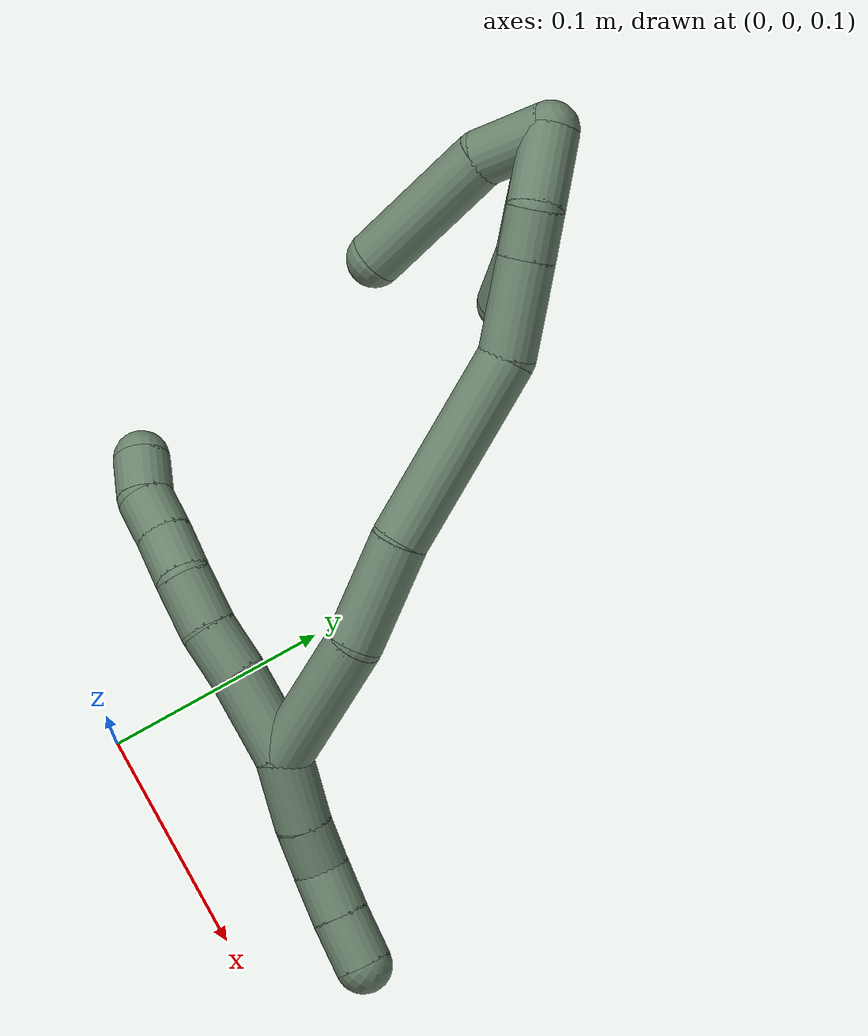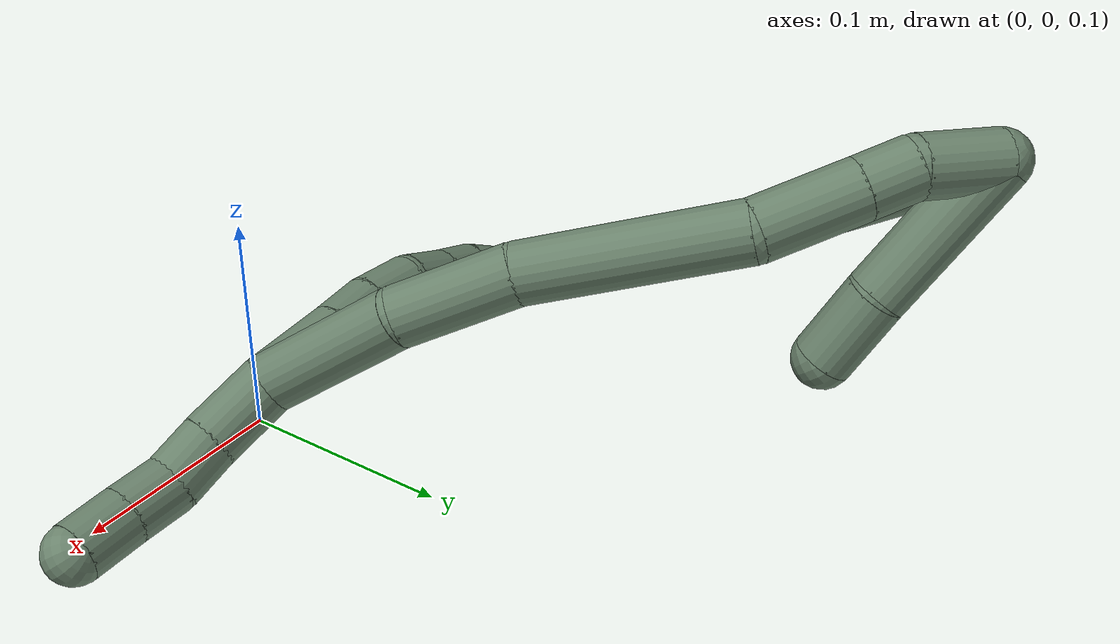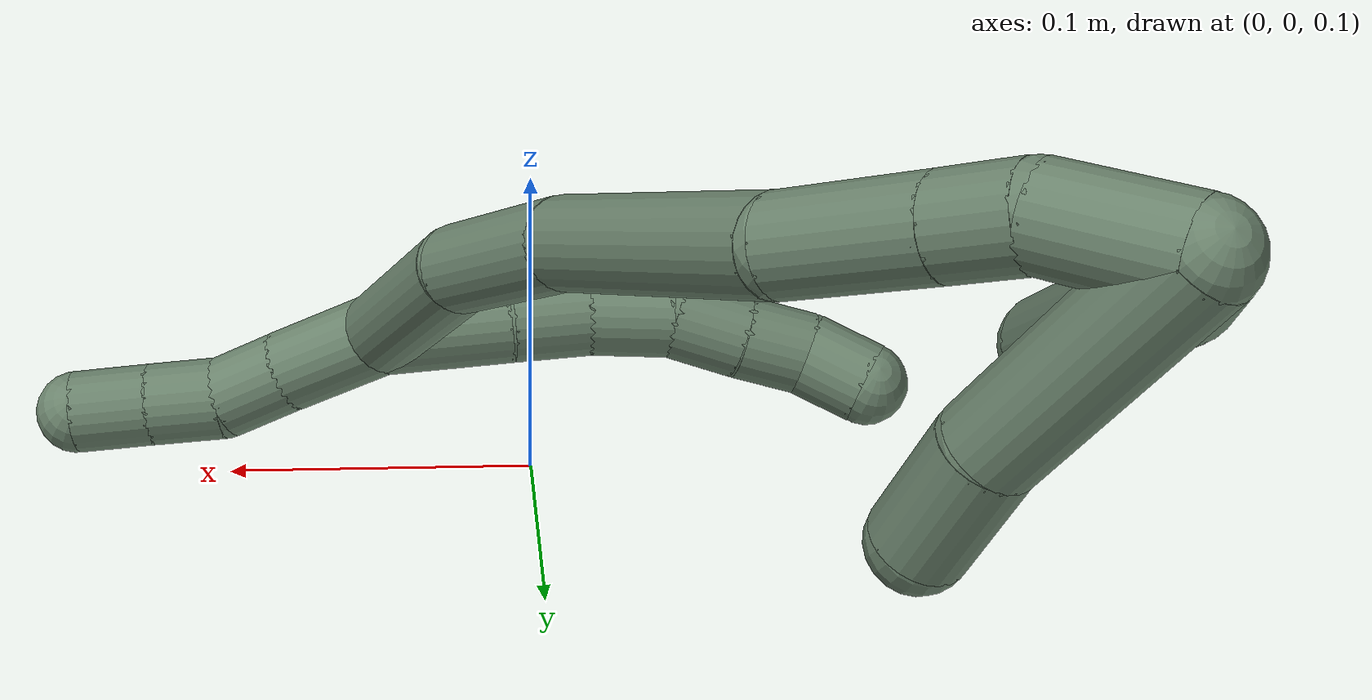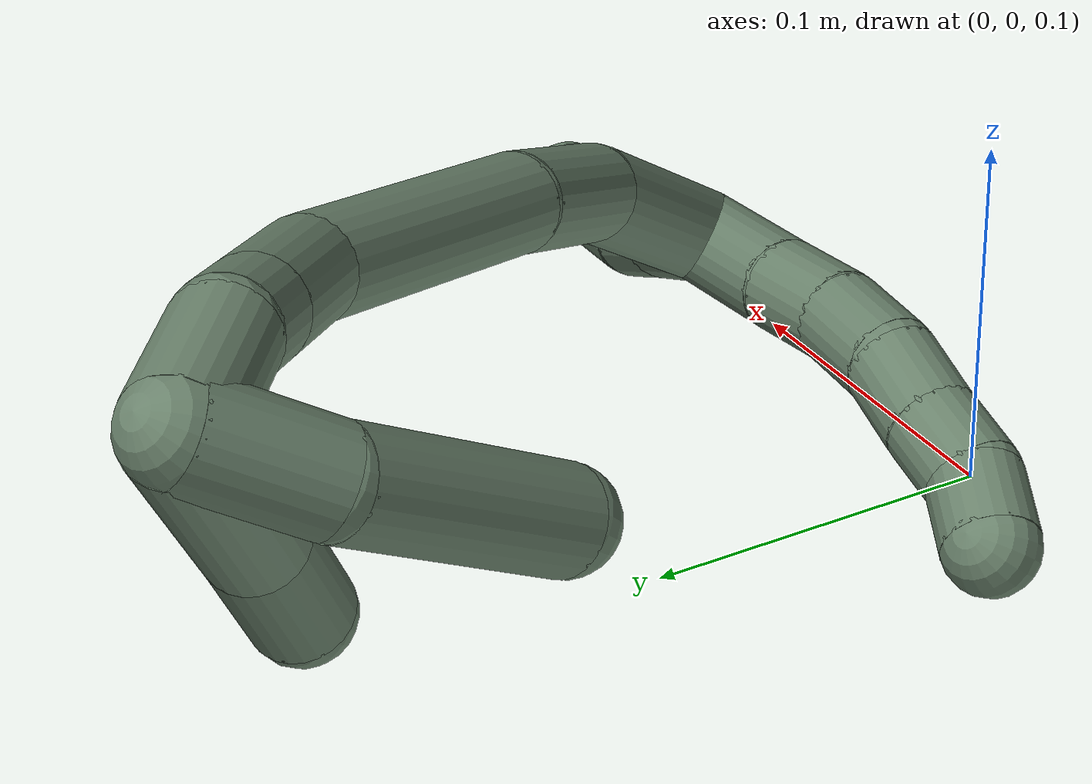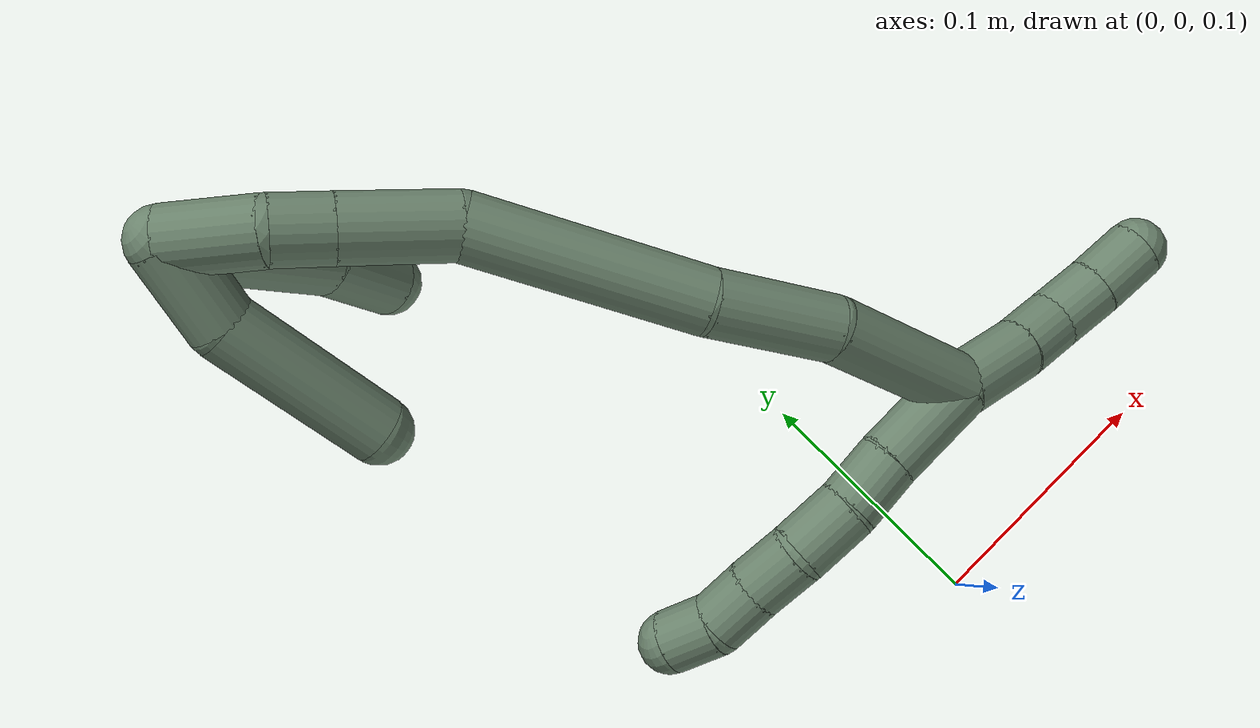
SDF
<sdf version="1.7">
 <world name="default">
  <model name="17">
   <static>0</static>
   <link name="17">
    <collision name="collision-cylinder-e_1_2_8">
     <pose>-0.014652 -0.012547 0.004507 1.22593 -0.832537 -0.602946</pose>
     <geometry><cylinder><radius>0.0125</radius><length>0.039619</length></cylinder></geometry>
     <surface>
      <friction><ode><mu>1.16</mu><mu2>1.16</mu2><slip1>0</slip1><slip2>0</slip2></ode></friction>
      <contact><ode><kp>1e+06</kp><kd>1</kd><max_vel>0</max_vel><min_depth>0.001</min_depth></ode></contact>
     </surface>
    </collision>
    <visual name="visual-cylinder-e_1_2_8">
     <pose>-0.014652 -0.012547 0.004507 1.22593 -0.832537 -0.602946</pose>
     <geometry><cylinder><radius>0.0125</radius><length>0.039619</length></cylinder></geometry>
     <material><ambient>0.415686 0.509804 0.423529 1</ambient></material>
    </visual>
    <collision name="collision-cylinder-e_2_8_9">
     <pose>-0.037965 -0.032835 0.01082 1.34167 -0.828203 -0.671221</pose>
     <geometry><cylinder><radius>0.0125</radius><length>0.023511</length></cylinder></geometry>
     <surface>
      <friction><ode><mu>1.16</mu><mu2>1.16</mu2><slip1>0</slip1><slip2>0</slip2></ode></friction>
      <contact><ode><kp>1e+06</kp><kd>1</kd><max_vel>0</max_vel><min_depth>0.001</min_depth></ode></contact>
     </surface>
    </collision>
    <visual name="visual-cylinder-e_2_8_9">
     <pose>-0.037965 -0.032835 0.01082 1.34167 -0.828203 -0.671221</pose>
     <geometry><cylinder><radius>0.0125</radius><length>0.023511</length></cylinder></geometry>
     <material><ambient>0.415686 0.509804 0.423529 1</ambient></material>
    </visual>
    <collision name="collision-cylinder-e_3_9_10">
     <pose>-0.056859 -0.047309 0.015151 1.21188 -0.958279 -0.691059</pose>
     <geometry><cylinder><radius>0.0125</radius><length>0.025015</length></cylinder></geometry>
     <surface>
      <friction><ode><mu>1.16</mu><mu2>1.16</mu2><slip1>0</slip1><slip2>0</slip2></ode></friction>
      <contact><ode><kp>1e+06</kp><kd>1</kd><max_vel>0</max_vel><min_depth>0.001</min_depth></ode></contact>
     </surface>
    </collision>
    <visual name="visual-cylinder-e_3_9_10">
     <pose>-0.056859 -0.047309 0.015151 1.21188 -0.958279 -0.691059</pose>
     <geometry><cylinder><radius>0.0125</radius><length>0.025015</length></cylinder></geometry>
     <material><ambient>0.415686 0.509804 0.423529 1</ambient></material>
    </visual>
    <collision name="collision-cylinder-e_4_10_11">
     <pose>-0.077236 -0.057798 0.018205 1.43116 -1.21301 -1.08531</pose>
     <geometry><cylinder><radius>0.0125</radius><length>0.021658</length></cylinder></geometry>
     <surface>
      <friction><ode><mu>1.16</mu><mu2>1.16</mu2><slip1>0</slip1><slip2>0</slip2></ode></friction>
      <contact><ode><kp>1e+06</kp><kd>1</kd><max_vel>0</max_vel><min_depth>0.001</min_depth></ode></contact>
     </surface>
    </collision>
    <visual name="visual-cylinder-e_4_10_11">
     <pose>-0.077236 -0.057798 0.018205 1.43116 -1.21301 -1.08531</pose>
     <geometry><cylinder><radius>0.0125</radius><length>0.021658</length></cylinder></geometry>
     <material><ambient>0.415686 0.509804 0.423529 1</ambient></material>
    </visual>
    <collision name="collision-cylinder-e_5_11_12">
     <pose>-0.096596 -0.065541 0.019113 1.47569 -1.16081 -1.0752</pose>
     <geometry><cylinder><radius>0.0125</radius><length>0.0201</length></cylinder></geometry>
     <surface>
      <friction><ode><mu>1.16</mu><mu2>1.16</mu2><slip1>0</slip1><slip2>0</slip2></ode></friction>
      <contact><ode><kp>1e+06</kp><kd>1</kd><max_vel>0</max_vel><min_depth>0.001</min_depth></ode></contact>
     </surface>
    </collision>
    <visual name="visual-cylinder-e_5_11_12">
     <pose>-0.096596 -0.065541 0.019113 1.47569 -1.16081 -1.0752</pose>
     <geometry><cylinder><radius>0.0125</radius><length>0.0201</length></cylinder></geometry>
     <material><ambient>0.415686 0.509804 0.423529 1</ambient></material>
    </visual>
    <collision name="collision-cylinder-e_6_12_6">
     <pose>-0.115626 -0.070508 0.021422 0.469904 -1.35388 -0.380083</pose>
     <geometry><cylinder><radius>0.0125</radius><length>0.020097</length></cylinder></geometry>
     <surface>
      <friction><ode><mu>1.16</mu><mu2>1.16</mu2><slip1>0</slip1><slip2>0</slip2></ode></friction>
      <contact><ode><kp>1e+06</kp><kd>1</kd><max_vel>0</max_vel><min_depth>0.001</min_depth></ode></contact>
     </surface>
    </collision>
    <visual name="visual-cylinder-e_6_12_6">
     <pose>-0.115626 -0.070508 0.021422 0.469904 -1.35388 -0.380083</pose>
     <geometry><cylinder><radius>0.0125</radius><length>0.020097</length></cylinder></geometry>
     <material><ambient>0.415686 0.509804 0.423529 1</ambient></material>
    </visual>
    <collision name="collision-cylinder-e_1_2_13">
     <pose>0.008409 0.010204 -0.009294 -2.30953 0.5472 -1.13178</pose>
     <geometry><cylinder><radius>0.0125</radius><length>0.032325</length></cylinder></geometry>
     <surface>
      <friction><ode><mu>1.16</mu><mu2>1.16</mu2><slip1>0</slip1><slip2>0</slip2></ode></friction>
      <contact><ode><kp>1e+06</kp><kd>1</kd><max_vel>0</max_vel><min_depth>0.001</min_depth></ode></contact>
     </surface>
    </collision>
    <visual name="visual-cylinder-e_1_2_13">
     <pose>0.008409 0.010204 -0.009294 -2.30953 0.5472 -1.13178</pose>
     <geometry><cylinder><radius>0.0125</radius><length>0.032325</length></cylinder></geometry>
     <material><ambient>0.415686 0.509804 0.423529 1</ambient></material>
    </visual>
    <collision name="collision-cylinder-e_2_13_14">
     <pose>0.02236 0.027979 -0.024158 -2.20514 0.532712 -0.98947</pose>
     <geometry><cylinder><radius>0.0125</radius><length>0.021821</length></cylinder></geometry>
     <surface>
      <friction><ode><mu>1.16</mu><mu2>1.16</mu2><slip1>0</slip1><slip2>0</slip2></ode></friction>
      <contact><ode><kp>1e+06</kp><kd>1</kd><max_vel>0</max_vel><min_depth>0.001</min_depth></ode></contact>
     </surface>
    </collision>
    <visual name="visual-cylinder-e_2_13_14">
     <pose>0.02236 0.027979 -0.024158 -2.20514 0.532712 -0.98947</pose>
     <geometry><cylinder><radius>0.0125</radius><length>0.021821</length></cylinder></geometry>
     <material><ambient>0.415686 0.509804 0.423529 1</ambient></material>
    </visual>
    <collision name="collision-cylinder-e_3_14_15">
     <pose>0.036176 0.041981 -0.033437 -2.09382 0.839528 -1.31547</pose>
     <geometry><cylinder><radius>0.0125</radius><length>0.022235</length></cylinder></geometry>
     <surface>
      <friction><ode><mu>1.16</mu><mu2>1.16</mu2><slip1>0</slip1><slip2>0</slip2></ode></friction>
      <contact><ode><kp>1e+06</kp><kd>1</kd><max_vel>0</max_vel><min_depth>0.001</min_depth></ode></contact>
     </surface>
    </collision>
    <visual name="visual-cylinder-e_3_14_15">
     <pose>0.036176 0.041981 -0.033437 -2.09382 0.839528 -1.31547</pose>
     <geometry><cylinder><radius>0.0125</radius><length>0.022235</length></cylinder></geometry>
     <material><ambient>0.415686 0.509804 0.423529 1</ambient></material>
    </visual>
    <collision name="collision-cylinder-e_4_15_5">
     <pose>0.053194 0.055549 -0.040625 -2.02458 0.833546 -1.23279</pose>
     <geometry><cylinder><radius>0.0125</radius><length>0.023619</length></cylinder></geometry>
     <surface>
      <friction><ode><mu>1.16</mu><mu2>1.16</mu2><slip1>0</slip1><slip2>0</slip2></ode></friction>
      <contact><ode><kp>1e+06</kp><kd>1</kd><max_vel>0</max_vel><min_depth>0.001</min_depth></ode></contact>
     </surface>
    </collision>
    <visual name="visual-cylinder-e_4_15_5">
     <pose>0.053194 0.055549 -0.040625 -2.02458 0.833546 -1.23279</pose>
     <geometry><cylinder><radius>0.0125</radius><length>0.023619</length></cylinder></geometry>
     <material><ambient>0.415686 0.509804 0.423529 1</ambient></material>
    </visual>
    <collision name="collision-cylinder-e_1_2_16">
     <pose>-0.006268 -0.001966 0.03124 0.062857 -0.197631 -0.006234</pose>
     <geometry><cylinder><radius>0.0125</radius><length>0.063846</length></cylinder></geometry>
     <surface>
      <friction><ode><mu>1.16</mu><mu2>1.16</mu2><slip1>0</slip1><slip2>0</slip2></ode></friction>
      <contact><ode><kp>1e+06</kp><kd>1</kd><max_vel>0</max_vel><min_depth>0.001</min_depth></ode></contact>
     </surface>
    </collision>
    <visual name="visual-cylinder-e_1_2_16">
     <pose>-0.006268 -0.001966 0.03124 0.062857 -0.197631 -0.006234</pose>
     <geometry><cylinder><radius>0.0125</radius><length>0.063846</length></cylinder></geometry>
     <material><ambient>0.415686 0.509804 0.423529 1</ambient></material>
    </visual>
    <collision name="collision-cylinder-e_2_16_17">
     <pose>-0.023252 -0.005662 0.084415 0.078684 -0.453194 -0.01815</pose>
     <geometry><cylinder><radius>0.0125</radius><length>0.048948</length></cylinder></geometry>
     <surface>
      <friction><ode><mu>1.16</mu><mu2>1.16</mu2><slip1>0</slip1><slip2>0</slip2></ode></friction>
      <contact><ode><kp>1e+06</kp><kd>1</kd><max_vel>0</max_vel><min_depth>0.001</min_depth></ode></contact>
     </surface>
    </collision>
    <visual name="visual-cylinder-e_2_16_17">
     <pose>-0.023252 -0.005662 0.084415 0.078684 -0.453194 -0.01815</pose>
     <geometry><cylinder><radius>0.0125</radius><length>0.048948</length></cylinder></geometry>
     <material><ambient>0.415686 0.509804 0.423529 1</ambient></material>
    </visual>
    <collision name="collision-cylinder-e_3_17_18">
     <pose>-0.055359 -0.003296 0.145127 -0.105237 -0.501774 0.026994</pose>
     <geometry><cylinder><radius>0.0125</radius><length>0.088949</length></cylinder></geometry>
     <surface>
      <friction><ode><mu>1.16</mu><mu2>1.16</mu2><slip1>0</slip1><slip2>0</slip2></ode></friction>
      <contact><ode><kp>1e+06</kp><kd>1</kd><max_vel>0</max_vel><min_depth>0.001</min_depth></ode></contact>
     </surface>
    </collision>
    <visual name="visual-cylinder-e_3_17_18">
     <pose>-0.055359 -0.003296 0.145127 -0.105237 -0.501774 0.026994</pose>
     <geometry><cylinder><radius>0.0125</radius><length>0.088949</length></cylinder></geometry>
     <material><ambient>0.415686 0.509804 0.423529 1</ambient></material>
    </visual>
    <collision name="collision-cylinder-e_4_18_19">
     <pose>-0.089291 -0.003516 0.200165 0.259438 -0.640528 -0.086483</pose>
     <geometry><cylinder><radius>0.0125</radius><length>0.041968</length></cylinder></geometry>
     <surface>
      <friction><ode><mu>1.16</mu><mu2>1.16</mu2><slip1>0</slip1><slip2>0</slip2></ode></friction>
      <contact><ode><kp>1e+06</kp><kd>1</kd><max_vel>0</max_vel><min_depth>0.001</min_depth></ode></contact>
     </surface>
    </collision>
    <visual name="visual-cylinder-e_4_18_19">
     <pose>-0.089291 -0.003516 0.200165 0.259438 -0.640528 -0.086483</pose>
     <geometry><cylinder><radius>0.0125</radius><length>0.041968</length></cylinder></geometry>
     <material><ambient>0.415686 0.509804 0.423529 1</ambient></material>
    </visual>
    <collision name="collision-cylinder-e_5_19_20">
     <pose>-0.108253 -0.010153 0.22476 0.271585 -0.638588 -0.090282</pose>
     <geometry><cylinder><radius>0.0125</radius><length>0.021548</length></cylinder></geometry>
     <surface>
      <friction><ode><mu>1.16</mu><mu2>1.16</mu2><slip1>0</slip1><slip2>0</slip2></ode></friction>
      <contact><ode><kp>1e+06</kp><kd>1</kd><max_vel>0</max_vel><min_depth>0.001</min_depth></ode></contact>
     </surface>
    </collision>
    <visual name="visual-cylinder-e_5_19_20">
     <pose>-0.108253 -0.010153 0.22476 0.271585 -0.638588 -0.090282</pose>
     <geometry><cylinder><radius>0.0125</radius><length>0.021548</length></cylinder></geometry>
     <material><ambient>0.415686 0.509804 0.423529 1</ambient></material>
    </visual>
    <collision name="collision-cylinder-e_6_20_1">
     <pose>-0.128769 -0.013148 0.243225 0.066455 -0.946464 -0.034037</pose>
     <geometry><cylinder><radius>0.0125</radius><length>0.034741</length></cylinder></geometry>
     <surface>
      <friction><ode><mu>1.16</mu><mu2>1.16</mu2><slip1>0</slip1><slip2>0</slip2></ode></friction>
      <contact><ode><kp>1e+06</kp><kd>1</kd><max_vel>0</max_vel><min_depth>0.001</min_depth></ode></contact>
     </surface>
    </collision>
    <visual name="visual-cylinder-e_6_20_1">
     <pose>-0.128769 -0.013148 0.243225 0.066455 -0.946464 -0.034037</pose>
     <geometry><cylinder><radius>0.0125</radius><length>0.034741</length></cylinder></geometry>
     <material><ambient>0.415686 0.509804 0.423529 1</ambient></material>
    </visual>
    <collision name="collision-cylinder-e_1_1_21">
     <pose>-0.140477 0.000943 0.223534 -2.68188 0.071563 -0.30361</pose>
     <geometry><cylinder><radius>0.0125</radius><length>0.066726</length></cylinder></geometry>
     <surface>
      <friction><ode><mu>1.16</mu><mu2>1.16</mu2><slip1>0</slip1><slip2>0</slip2></ode></friction>
      <contact><ode><kp>1e+06</kp><kd>1</kd><max_vel>0</max_vel><min_depth>0.001</min_depth></ode></contact>
     </surface>
    </collision>
    <visual name="visual-cylinder-e_1_1_21">
     <pose>-0.140477 0.000943 0.223534 -2.68188 0.071563 -0.30361</pose>
     <geometry><cylinder><radius>0.0125</radius><length>0.066726</length></cylinder></geometry>
     <material><ambient>0.415686 0.509804 0.423529 1</ambient></material>
    </visual>
    <collision name="collision-cylinder-e_2_21_4">
     <pose>-0.139733 0.022019 0.178405 -2.75052 -0.098865 0.48954</pose>
     <geometry><cylinder><radius>0.0125</radius><length>0.033274</length></cylinder></geometry>
     <surface>
      <friction><ode><mu>1.16</mu><mu2>1.16</mu2><slip1>0</slip1><slip2>0</slip2></ode></friction>
      <contact><ode><kp>1e+06</kp><kd>1</kd><max_vel>0</max_vel><min_depth>0.001</min_depth></ode></contact>
     </surface>
    </collision>
    <visual name="visual-cylinder-e_2_21_4">
     <pose>-0.139733 0.022019 0.178405 -2.75052 -0.098865 0.48954</pose>
     <geometry><cylinder><radius>0.0125</radius><length>0.033274</length></cylinder></geometry>
     <material><ambient>0.415686 0.509804 0.423529 1</ambient></material>
    </visual>
    <collision name="collision-cylinder-e_1_1_22">
     <pose>-0.146021 -0.019956 0.237832 2.76532 -0.18703 -0.915444</pose>
     <geometry><cylinder><radius>0.0125</radius><length>0.033978</length></cylinder></geometry>
     <surface>
      <friction><ode><mu>1.16</mu><mu2>1.16</mu2><slip1>0</slip1><slip2>0</slip2></ode></friction>
      <contact><ode><kp>1e+06</kp><kd>1</kd><max_vel>0</max_vel><min_depth>0.001</min_depth></ode></contact>
     </surface>
    </collision>
    <visual name="visual-cylinder-e_1_1_22">
     <pose>-0.146021 -0.019956 0.237832 2.76532 -0.18703 -0.915444</pose>
     <geometry><cylinder><radius>0.0125</radius><length>0.033978</length></cylinder></geometry>
     <material><ambient>0.415686 0.509804 0.423529 1</ambient></material>
    </visual>
    <collision name="collision-cylinder-e_2_22_3">
     <pose>-0.146223 -0.03145 0.189869 2.97782 0.089712 1.00096</pose>
     <geometry><cylinder><radius>0.0125</radius><length>0.066022</length></cylinder></geometry>
     <surface>
      <friction><ode><mu>1.16</mu><mu2>1.16</mu2><slip1>0</slip1><slip2>0</slip2></ode></friction>
      <contact><ode><kp>1e+06</kp><kd>1</kd><max_vel>0</max_vel><min_depth>0.001</min_depth></ode></contact>
     </surface>
    </collision>
    <visual name="visual-cylinder-e_2_22_3">
     <pose>-0.146223 -0.03145 0.189869 2.97782 0.089712 1.00096</pose>
     <geometry><cylinder><radius>0.0125</radius><length>0.066022</length></cylinder></geometry>
     <material><ambient>0.415686 0.509804 0.423529 1</ambient></material>
    </visual>
    <collision name="collision-sphere-3">
     <pose>-0.143265 -0.036811 0.15743 0 -0 0</pose>
     <geometry><sphere><radius>0.0125</radius></sphere></geometry>
     <surface>
      <friction><ode><mu>1.16</mu><mu2>1.16</mu2><slip1>0</slip1><slip2>0</slip2></ode></friction>
      <contact><ode><kp>1e+06</kp><kd>1</kd><max_vel>0</max_vel><min_depth>0.001</min_depth></ode></contact>
     </surface>
    </collision>
    <visual name="visual-sphere-3">
     <pose>-0.143265 -0.036811 0.15743 0 -0 0</pose>
     <geometry><sphere><radius>0.0125</radius></sphere></geometry>
     <material><ambient>0.415686 0.509804 0.423529 1</ambient></material>
    </visual>
    <collision name="collision-sphere-22">
     <pose>-0.14918 -0.026089 0.222308 0 -0 0</pose>
     <geometry><sphere><radius>0.0125</radius></sphere></geometry>
     <surface>
      <friction><ode><mu>1.16</mu><mu2>1.16</mu2><slip1>0</slip1><slip2>0</slip2></ode></friction>
      <contact><ode><kp>1e+06</kp><kd>1</kd><max_vel>0</max_vel><min_depth>0.001</min_depth></ode></contact>
     </surface>
    </collision>
    <visual name="visual-sphere-22">
     <pose>-0.14918 -0.026089 0.222308 0 -0 0</pose>
     <geometry><sphere><radius>0.0125</radius></sphere></geometry>
     <material><ambient>0.415686 0.509804 0.423529 1</ambient></material>
    </visual>
    <collision name="collision-sphere-4">
     <pose>-0.141376 0.02833 0.1631 0 -0 0</pose>
     <geometry><sphere><radius>0.0125</radius></sphere></geometry>
     <surface>
      <friction><ode><mu>1.16</mu><mu2>1.16</mu2><slip1>0</slip1><slip2>0</slip2></ode></friction>
      <contact><ode><kp>1e+06</kp><kd>1</kd><max_vel>0</max_vel><min_depth>0.001</min_depth></ode></contact>
     </surface>
    </collision>
    <visual name="visual-sphere-4">
     <pose>-0.141376 0.02833 0.1631 0 -0 0</pose>
     <geometry><sphere><radius>0.0125</radius></sphere></geometry>
     <material><ambient>0.415686 0.509804 0.423529 1</ambient></material>
    </visual>
    <collision name="collision-sphere-21">
     <pose>-0.138091 0.015708 0.193711 0 -0 0</pose>
     <geometry><sphere><radius>0.0125</radius></sphere></geometry>
     <surface>
      <friction><ode><mu>1.16</mu><mu2>1.16</mu2><slip1>0</slip1><slip2>0</slip2></ode></friction>
      <contact><ode><kp>1e+06</kp><kd>1</kd><max_vel>0</max_vel><min_depth>0.001</min_depth></ode></contact>
     </surface>
    </collision>
    <visual name="visual-sphere-21">
     <pose>-0.138091 0.015708 0.193711 0 -0 0</pose>
     <geometry><sphere><radius>0.0125</radius></sphere></geometry>
     <material><ambient>0.415686 0.509804 0.423529 1</ambient></material>
    </visual>
    <collision name="collision-sphere-1">
     <pose>-0.142862 -0.013822 0.253357 0 -0 0</pose>
     <geometry><sphere><radius>0.0125</radius></sphere></geometry>
     <surface>
      <friction><ode><mu>1.16</mu><mu2>1.16</mu2><slip1>0</slip1><slip2>0</slip2></ode></friction>
      <contact><ode><kp>1e+06</kp><kd>1</kd><max_vel>0</max_vel><min_depth>0.001</min_depth></ode></contact>
     </surface>
    </collision>
    <visual name="visual-sphere-1">
     <pose>-0.142862 -0.013822 0.253357 0 -0 0</pose>
     <geometry><sphere><radius>0.0125</radius></sphere></geometry>
     <material><ambient>0.415686 0.509804 0.423529 1</ambient></material>
    </visual>
    <collision name="collision-sphere-12">
     <pose>-0.105813 -0.069528 0.019493 0 -0 0</pose>
     <geometry><sphere><radius>0.0125</radius></sphere></geometry>
     <surface>
      <friction><ode><mu>1.16</mu><mu2>1.16</mu2><slip1>0</slip1><slip2>0</slip2></ode></friction>
      <contact><ode><kp>1e+06</kp><kd>1</kd><max_vel>0</max_vel><min_depth>0.001</min_depth></ode></contact>
     </surface>
    </collision>
    <visual name="visual-sphere-12">
     <pose>-0.105813 -0.069528 0.019493 0 -0 0</pose>
     <geometry><sphere><radius>0.0125</radius></sphere></geometry>
     <material><ambient>0.415686 0.509804 0.423529 1</ambient></material>
    </visual>
    <collision name="collision-sphere-11">
     <pose>-0.087379 -0.061553 0.018733 0 -0 0</pose>
     <geometry><sphere><radius>0.0125</radius></sphere></geometry>
     <surface>
      <friction><ode><mu>1.16</mu><mu2>1.16</mu2><slip1>0</slip1><slip2>0</slip2></ode></friction>
      <contact><ode><kp>1e+06</kp><kd>1</kd><max_vel>0</max_vel><min_depth>0.001</min_depth></ode></contact>
     </surface>
    </collision>
    <visual name="visual-sphere-11">
     <pose>-0.087379 -0.061553 0.018733 0 -0 0</pose>
     <geometry><sphere><radius>0.0125</radius></sphere></geometry>
     <material><ambient>0.415686 0.509804 0.423529 1</ambient></material>
    </visual>
    <collision name="collision-sphere-10">
     <pose>-0.067093 -0.054042 0.017677 0 -0 0</pose>
     <geometry><sphere><radius>0.0125</radius></sphere></geometry>
     <surface>
      <friction><ode><mu>1.16</mu><mu2>1.16</mu2><slip1>0</slip1><slip2>0</slip2></ode></friction>
      <contact><ode><kp>1e+06</kp><kd>1</kd><max_vel>0</max_vel><min_depth>0.001</min_depth></ode></contact>
     </surface>
    </collision>
    <visual name="visual-sphere-10">
     <pose>-0.067093 -0.054042 0.017677 0 -0 0</pose>
     <geometry><sphere><radius>0.0125</radius></sphere></geometry>
     <material><ambient>0.415686 0.509804 0.423529 1</ambient></material>
    </visual>
    <collision name="collision-sphere-9">
     <pose>-0.046625 -0.040577 0.012625 0 -0 0</pose>
     <geometry><sphere><radius>0.0125</radius></sphere></geometry>
     <surface>
      <friction><ode><mu>1.16</mu><mu2>1.16</mu2><slip1>0</slip1><slip2>0</slip2></ode></friction>
      <contact><ode><kp>1e+06</kp><kd>1</kd><max_vel>0</max_vel><min_depth>0.001</min_depth></ode></contact>
     </surface>
    </collision>
    <visual name="visual-sphere-9">
     <pose>-0.046625 -0.040577 0.012625 0 -0 0</pose>
     <geometry><sphere><radius>0.0125</radius></sphere></geometry>
     <material><ambient>0.415686 0.509804 0.423529 1</ambient></material>
    </visual>
    <collision name="collision-sphere-2">
     <geometry><sphere><radius>0.0125</radius></sphere></geometry>
     <surface>
      <friction><ode><mu>1.16</mu><mu2>1.16</mu2><slip1>0</slip1><slip2>0</slip2></ode></friction>
      <contact><ode><kp>1e+06</kp><kd>1</kd><max_vel>0</max_vel><min_depth>0.001</min_depth></ode></contact>
     </surface>
    </collision>
    <visual name="visual-sphere-2">
     <geometry><sphere><radius>0.0125</radius></sphere></geometry>
     <material><ambient>0.415686 0.509804 0.423529 1</ambient></material>
    </visual>
    <collision name="collision-sphere-19">
     <pose>-0.101831 -0.007832 0.216426 0 -0 0</pose>
     <geometry><sphere><radius>0.0125</radius></sphere></geometry>
     <surface>
      <friction><ode><mu>1.16</mu><mu2>1.16</mu2><slip1>0</slip1><slip2>0</slip2></ode></friction>
      <contact><ode><kp>1e+06</kp><kd>1</kd><max_vel>0</max_vel><min_depth>0.001</min_depth></ode></contact>
     </surface>
    </collision>
    <visual name="visual-sphere-19">
     <pose>-0.101831 -0.007832 0.216426 0 -0 0</pose>
     <geometry><sphere><radius>0.0125</radius></sphere></geometry>
     <material><ambient>0.415686 0.509804 0.423529 1</ambient></material>
    </visual>
    <collision name="collision-sphere-8">
     <pose>-0.029304 -0.025094 0.009014 0 -0 0</pose>
     <geometry><sphere><radius>0.0125</radius></sphere></geometry>
     <surface>
      <friction><ode><mu>1.16</mu><mu2>1.16</mu2><slip1>0</slip1><slip2>0</slip2></ode></friction>
      <contact><ode><kp>1e+06</kp><kd>1</kd><max_vel>0</max_vel><min_depth>0.001</min_depth></ode></contact>
     </surface>
    </collision>
    <visual name="visual-sphere-8">
     <pose>-0.029304 -0.025094 0.009014 0 -0 0</pose>
     <geometry><sphere><radius>0.0125</radius></sphere></geometry>
     <material><ambient>0.415686 0.509804 0.423529 1</ambient></material>
    </visual>
    <collision name="collision-sphere-6">
     <pose>-0.125439 -0.071487 0.02335 0 -0 0</pose>
     <geometry><sphere><radius>0.0125</radius></sphere></geometry>
     <surface>
      <friction><ode><mu>1.16</mu><mu2>1.16</mu2><slip1>0</slip1><slip2>0</slip2></ode></friction>
      <contact><ode><kp>1e+06</kp><kd>1</kd><max_vel>0</max_vel><min_depth>0.001</min_depth></ode></contact>
     </surface>
    </collision>
    <visual name="visual-sphere-6">
     <pose>-0.125439 -0.071487 0.02335 0 -0 0</pose>
     <geometry><sphere><radius>0.0125</radius></sphere></geometry>
     <material><ambient>0.415686 0.509804 0.423529 1</ambient></material>
    </visual>
    <collision name="collision-sphere-13">
     <pose>0.016818 0.020409 -0.018588 0 -0 0</pose>
     <geometry><sphere><radius>0.0125</radius></sphere></geometry>
     <surface>
      <friction><ode><mu>1.16</mu><mu2>1.16</mu2><slip1>0</slip1><slip2>0</slip2></ode></friction>
      <contact><ode><kp>1e+06</kp><kd>1</kd><max_vel>0</max_vel><min_depth>0.001</min_depth></ode></contact>
     </surface>
    </collision>
    <visual name="visual-sphere-13">
     <pose>0.016818 0.020409 -0.018588 0 -0 0</pose>
     <geometry><sphere><radius>0.0125</radius></sphere></geometry>
     <material><ambient>0.415686 0.509804 0.423529 1</ambient></material>
    </visual>
    <collision name="collision-sphere-14">
     <pose>0.027901 0.03555 -0.029728 0 -0 0</pose>
     <geometry><sphere><radius>0.0125</radius></sphere></geometry>
     <surface>
      <friction><ode><mu>1.16</mu><mu2>1.16</mu2><slip1>0</slip1><slip2>0</slip2></ode></friction>
      <contact><ode><kp>1e+06</kp><kd>1</kd><max_vel>0</max_vel><min_depth>0.001</min_depth></ode></contact>
     </surface>
    </collision>
    <visual name="visual-sphere-14">
     <pose>0.027901 0.03555 -0.029728 0 -0 0</pose>
     <geometry><sphere><radius>0.0125</radius></sphere></geometry>
     <material><ambient>0.415686 0.509804 0.423529 1</ambient></material>
    </visual>
    <collision name="collision-sphere-15">
     <pose>0.044451 0.048413 -0.037145 0 -0 0</pose>
     <geometry><sphere><radius>0.0125</radius></sphere></geometry>
     <surface>
      <friction><ode><mu>1.16</mu><mu2>1.16</mu2><slip1>0</slip1><slip2>0</slip2></ode></friction>
      <contact><ode><kp>1e+06</kp><kd>1</kd><max_vel>0</max_vel><min_depth>0.001</min_depth></ode></contact>
     </surface>
    </collision>
    <visual name="visual-sphere-15">
     <pose>0.044451 0.048413 -0.037145 0 -0 0</pose>
     <geometry><sphere><radius>0.0125</radius></sphere></geometry>
     <material><ambient>0.415686 0.509804 0.423529 1</ambient></material>
    </visual>
    <collision name="collision-sphere-5">
     <pose>0.061937 0.062684 -0.044106 0 -0 0</pose>
     <geometry><sphere><radius>0.0125</radius></sphere></geometry>
     <surface>
      <friction><ode><mu>1.16</mu><mu2>1.16</mu2><slip1>0</slip1><slip2>0</slip2></ode></friction>
      <contact><ode><kp>1e+06</kp><kd>1</kd><max_vel>0</max_vel><min_depth>0.001</min_depth></ode></contact>
     </surface>
    </collision>
    <visual name="visual-sphere-5">
     <pose>0.061937 0.062684 -0.044106 0 -0 0</pose>
     <geometry><sphere><radius>0.0125</radius></sphere></geometry>
     <material><ambient>0.415686 0.509804 0.423529 1</ambient></material>
    </visual>
    <collision name="collision-sphere-16">
     <pose>-0.012536 -0.003932 0.062479 0 -0 0</pose>
     <geometry><sphere><radius>0.0125</radius></sphere></geometry>
     <surface>
      <friction><ode><mu>1.16</mu><mu2>1.16</mu2><slip1>0</slip1><slip2>0</slip2></ode></friction>
      <contact><ode><kp>1e+06</kp><kd>1</kd><max_vel>0</max_vel><min_depth>0.001</min_depth></ode></contact>
     </surface>
    </collision>
    <visual name="visual-sphere-16">
     <pose>-0.012536 -0.003932 0.062479 0 -0 0</pose>
     <geometry><sphere><radius>0.0125</radius></sphere></geometry>
     <material><ambient>0.415686 0.509804 0.423529 1</ambient></material>
    </visual>
    <collision name="collision-sphere-17">
     <pose>-0.033967 -0.007391 0.10635 0 -0 0</pose>
     <geometry><sphere><radius>0.0125</radius></sphere></geometry>
     <surface>
      <friction><ode><mu>1.16</mu><mu2>1.16</mu2><slip1>0</slip1><slip2>0</slip2></ode></friction>
      <contact><ode><kp>1e+06</kp><kd>1</kd><max_vel>0</max_vel><min_depth>0.001</min_depth></ode></contact>
     </surface>
    </collision>
    <visual name="visual-sphere-17">
     <pose>-0.033967 -0.007391 0.10635 0 -0 0</pose>
     <geometry><sphere><radius>0.0125</radius></sphere></geometry>
     <material><ambient>0.415686 0.509804 0.423529 1</ambient></material>
    </visual>
    <collision name="collision-sphere-18">
     <pose>-0.07675 0.0008 0.183903 0 -0 0</pose>
     <geometry><sphere><radius>0.0125</radius></sphere></geometry>
     <surface>
      <friction><ode><mu>1.16</mu><mu2>1.16</mu2><slip1>0</slip1><slip2>0</slip2></ode></friction>
      <contact><ode><kp>1e+06</kp><kd>1</kd><max_vel>0</max_vel><min_depth>0.001</min_depth></ode></contact>
     </surface>
    </collision>
    <visual name="visual-sphere-18">
     <pose>-0.07675 0.0008 0.183903 0 -0 0</pose>
     <geometry><sphere><radius>0.0125</radius></sphere></geometry>
     <material><ambient>0.415686 0.509804 0.423529 1</ambient></material>
    </visual>
    <collision name="collision-sphere-20">
     <pose>-0.114675 -0.012473 0.233094 0 -0 0</pose>
     <geometry><sphere><radius>0.0125</radius></sphere></geometry>
     <surface>
      <friction><ode><mu>1.16</mu><mu2>1.16</mu2><slip1>0</slip1><slip2>0</slip2></ode></friction>
      <contact><ode><kp>1e+06</kp><kd>1</kd><max_vel>0</max_vel><min_depth>0.001</min_depth></ode></contact>
     </surface>
    </collision>
    <visual name="visual-sphere-20">
     <pose>-0.114675 -0.012473 0.233094 0 -0 0</pose>
     <geometry><sphere><radius>0.0125</radius></sphere></geometry>
     <material><ambient>0.415686 0.509804 0.423529 1</ambient></material>
    </visual>
    <inertial>
     <pose>-0.06889 -0.008974 0.108917 0 -0 0</pose>
     <mass>0.75</mass>
     <inertia><ixx>0.00014</ixx><ixy>0</ixy><ixz>0</ixz><iyy>8.3e-05</iyy><iyz>0</iyz><izz>5e-05</izz></inertia>
    </inertial>
   </link>
   <pose>0.04764 0.058666 0.16891 -0.699836 -0.574984 -0.341898</pose>
  </model>
 </world>
</sdf>
